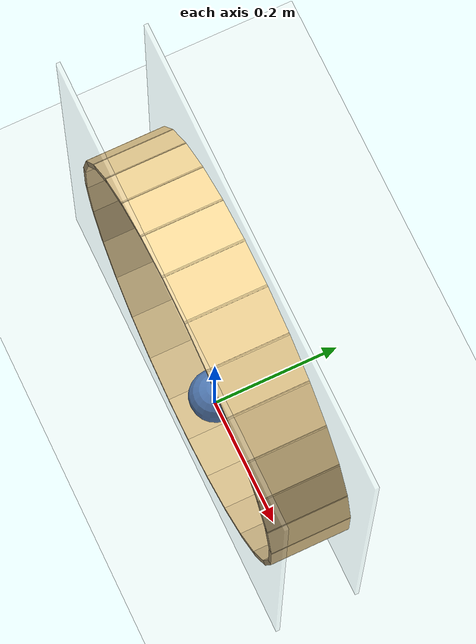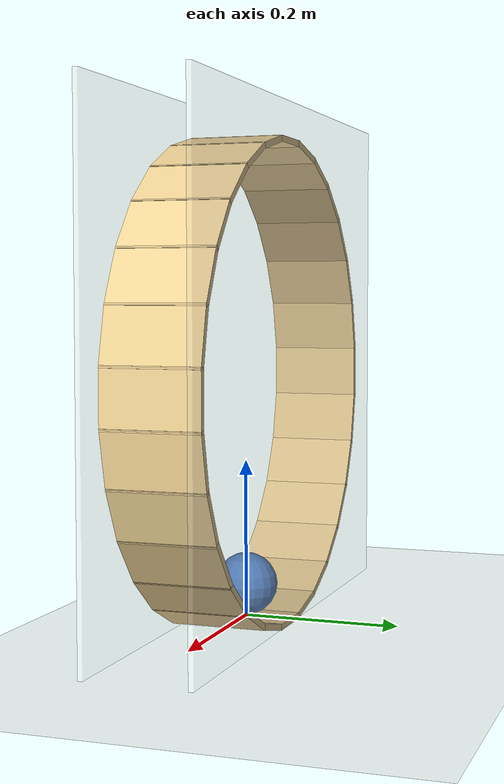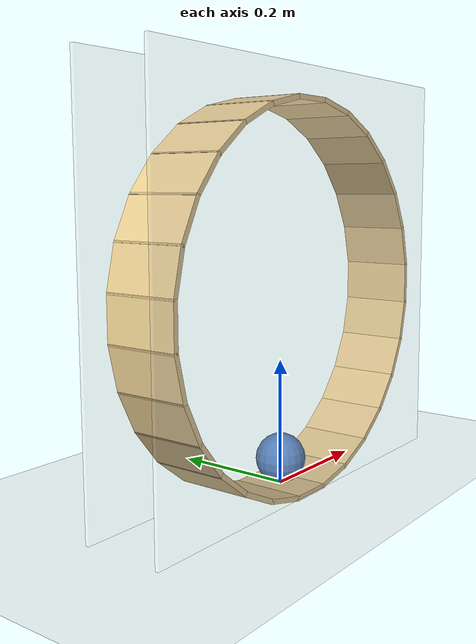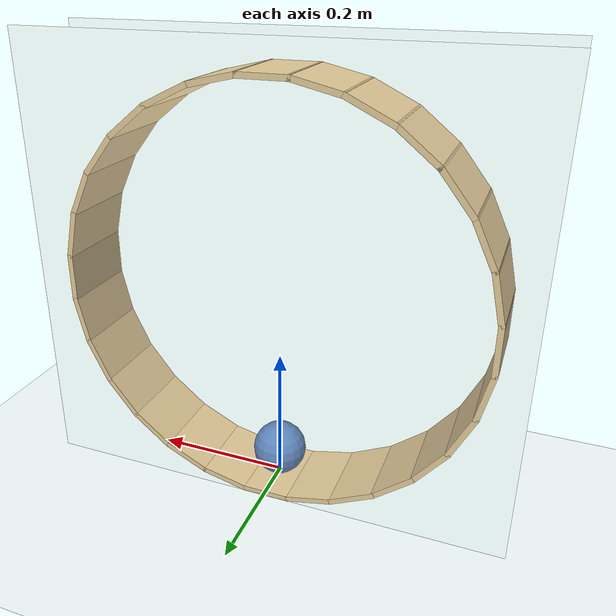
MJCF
<mujoco model="loop_the_loop">
  <compiler angle="radian" coordinate="local" autolimits="true"/>
  <option timestep="0.0005" gravity="0 0 -9.81" integrator="implicitfast"
          impratio="5" cone="elliptic"/>

  <visual>
    <headlight diffuse="0 0 0" ambient="0.50 0.48 0.55" specular="0 0 0"/>
    <rgba haze="0.94 0.91 0.90 1"/>
    <global azimuth="120" elevation="-15" offwidth="1920" offheight="1080" fovy="36"/>
    <quality shadowsize="8192" offsamples="8"/>
    <map shadowclip="6" shadowscale="0.7"/>
  </visual>

  <asset>
    <texture type="skybox" builtin="flat"
             rgb1="0.74 0.68 0.86" rgb2="0.74 0.68 0.86"
             width="512" height="512" mark="none" markrgb="0 0 0"/>
    <material name="floor_mat" rgba="0.94 0.91 0.90 1" specular="0" shininess="0"/>
    <material name="track_warm" rgba="0.93 0.82 0.58 1" specular="0.15" shininess="0.2"/>
    <material name="wall_glass" rgba="0.85 0.82 0.78 0.18" specular="0.4" shininess="0.5"/>
    <material name="ball_blue"  rgba="0.30 0.50 0.78 1" specular="0.55" shininess="0.65"/>
  </asset>

  <default>
    <!-- Very low friction so the ball can keep orbiting; ball-on-track is
         primarily a normal-force interaction here, not a frictional one. -->
    <geom friction="0.06 0.003 0.0001" solref="0.002 1" solimp="0.97 0.99 0.001"/>
  </default>

  <worldbody>
    <light pos="0 0 12" dir="-0.30 0.55 -1" directional="true" castshadow="true"
           diffuse="0.85 0.82 0.78" specular="0.15 0.15 0.15"/>
    <light pos="0 0 8" dir="0.40 -0.30 -1" directional="true" castshadow="false"
           diffuse="0.28 0.28 0.34" specular="0 0 0"/>

    <geom name="floor" type="plane" size="40 40 0.1" material="floor_mat"/>

    <!-- Loop: 28 segments, closed.  Bottom of inside-surface at z=0. -->
    <geom type="box" pos="0.0000 0 -0.0040" euler="0 -0.00000 0" size="0.0363 0.06 0.004" material="track_warm"/>
    <geom type="box" pos="0.0676 0 0.0036" euler="0 -0.22440 0" size="0.0363 0.06 0.004" material="track_warm"/>
    <geom type="box" pos="0.1319 0 0.0261" euler="0 -0.44880 0" size="0.0363 0.06 0.004" material="track_warm"/>
    <geom type="box" pos="0.1895 0 0.0623" euler="0 -0.67320 0" size="0.0363 0.06 0.004" material="track_warm"/>
    <geom type="box" pos="0.2377 0 0.1105" euler="0 -0.89760 0" size="0.0363 0.06 0.004" material="track_warm"/>
    <geom type="box" pos="0.2739 0 0.1681" euler="0 -1.12200 0" size="0.0363 0.06 0.004" material="track_warm"/>
    <geom type="box" pos="0.2964 0 0.2324" euler="0 -1.34640 0" size="0.0363 0.06 0.004" material="track_warm"/>
    <geom type="box" pos="0.3040 0 0.3000" euler="0 -1.57080 0" size="0.0363 0.06 0.004" material="track_warm"/>
    <geom type="box" pos="0.2964 0 0.3676" euler="0 -1.79520 0" size="0.0363 0.06 0.004" material="track_warm"/>
    <geom type="box" pos="0.2739 0 0.4319" euler="0 -2.01960 0" size="0.0363 0.06 0.004" material="track_warm"/>
    <geom type="box" pos="0.2377 0 0.4895" euler="0 -2.24399 0" size="0.0363 0.06 0.004" material="track_warm"/>
    <geom type="box" pos="0.1895 0 0.5377" euler="0 -2.46839 0" size="0.0363 0.06 0.004" material="track_warm"/>
    <geom type="box" pos="0.1319 0 0.5739" euler="0 -2.69279 0" size="0.0363 0.06 0.004" material="track_warm"/>
    <geom type="box" pos="0.0676 0 0.5964" euler="0 -2.91719 0" size="0.0363 0.06 0.004" material="track_warm"/>
    <geom type="box" pos="0.0000 0 0.6040" euler="0 -3.14159 0" size="0.0363 0.06 0.004" material="track_warm"/>
    <geom type="box" pos="-0.0676 0 0.5964" euler="0 -3.36599 0" size="0.0363 0.06 0.004" material="track_warm"/>
    <geom type="box" pos="-0.1319 0 0.5739" euler="0 -3.59039 0" size="0.0363 0.06 0.004" material="track_warm"/>
    <geom type="box" pos="-0.1895 0 0.5377" euler="0 -3.81479 0" size="0.0363 0.06 0.004" material="track_warm"/>
    <geom type="box" pos="-0.2377 0 0.4895" euler="0 -4.03919 0" size="0.0363 0.06 0.004" material="track_warm"/>
    <geom type="box" pos="-0.2739 0 0.4319" euler="0 -4.26359 0" size="0.0363 0.06 0.004" material="track_warm"/>
    <geom type="box" pos="-0.2964 0 0.3676" euler="0 -4.48799 0" size="0.0363 0.06 0.004" material="track_warm"/>
    <geom type="box" pos="-0.3040 0 0.3000" euler="0 -4.71239 0" size="0.0363 0.06 0.004" material="track_warm"/>
    <geom type="box" pos="-0.2964 0 0.2324" euler="0 -4.93679 0" size="0.0363 0.06 0.004" material="track_warm"/>
    <geom type="box" pos="-0.2739 0 0.1681" euler="0 -5.16119 0" size="0.0363 0.06 0.004" material="track_warm"/>
    <geom type="box" pos="-0.2377 0 0.1105" euler="0 -5.38559 0" size="0.0363 0.06 0.004" material="track_warm"/>
    <geom type="box" pos="-0.1895 0 0.0623" euler="0 -5.60999 0" size="0.0363 0.06 0.004" material="track_warm"/>
    <geom type="box" pos="-0.1319 0 0.0261" euler="0 -5.83439 0" size="0.0363 0.06 0.004" material="track_warm"/>
    <geom type="box" pos="-0.0676 0 0.0036" euler="0 -6.05879 0" size="0.0363 0.06 0.004" material="track_warm"/>

    <geom type="box" pos="0 -0.0640 0.3000" size="0.35 0.003 0.35" material="wall_glass" contype="0" conaffinity="0"/>
    <geom type="box" pos="0 0.0640 0.3000" size="0.35 0.003 0.35" material="wall_glass" contype="0" conaffinity="0"/>

    <!-- Ball: starts on the loop bottom, gets a horizontal launch via CLI
         init-qvel.  Center z = BALL_R so it sits just inside the loop. -->
    <body name="ball" pos="0 0 0.0410">
      <joint name="ball_free" type="free"/>
      <geom name="ball_geom" type="sphere" size="0.04" mass="0.04"
            material="ball_blue"/>
    </body>

    <!-- Camera: nearly pure side view (-y), slight tilt so the loop reads as
         a true circle. -->
    <camera name="cam" pos="0.40 -2.50 0.35" fovy="36"
            xyaxes="0.987 0.158 0   -0.003 0.019 1.000"/>
  </worldbody>
</mujoco>
